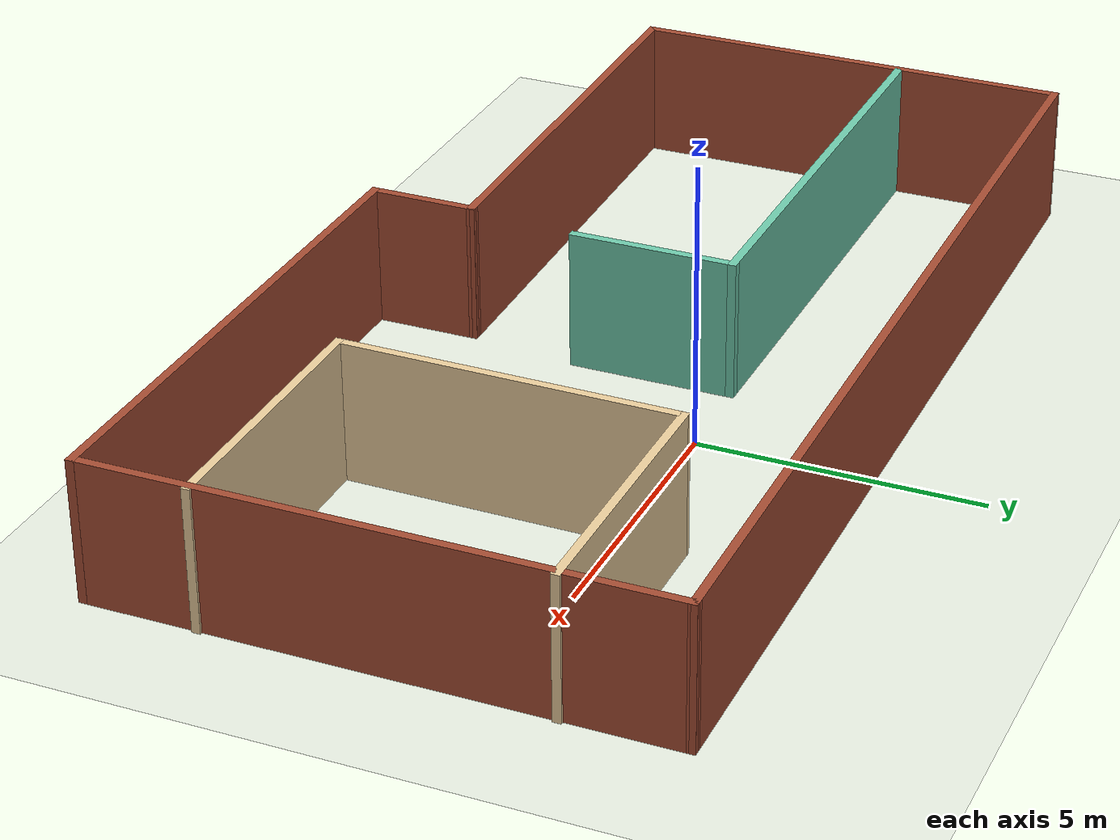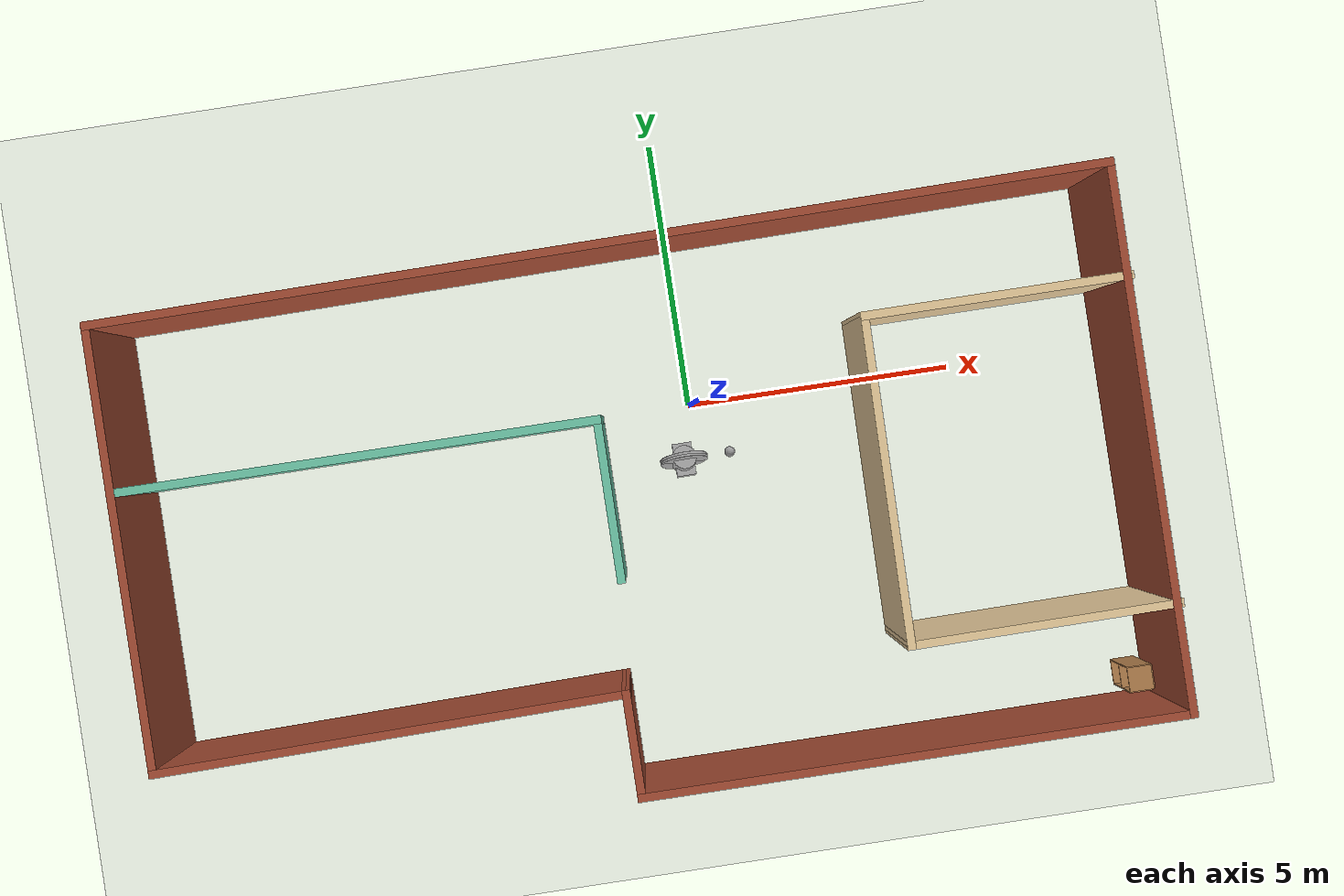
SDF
<sdf version="1.7">
 <world name="default">
  <model name="ground_plane">
   <static>1</static>
   <link name="link">
    <collision name="collision">
     <geometry><plane><normal>0 0 1</normal><size>100 100</size></plane></geometry>
     <surface>
      <contact><collide_bitmask>65535</collide_bitmask></contact>
      <friction><ode><mu>100</mu><mu2>50</mu2></ode></friction>
     </surface>
    </collision>
    <visual name="visual">
     <cast_shadows>0</cast_shadows>
     <geometry><plane><normal>0 0 1</normal><size>100 100</size></plane></geometry>
     <material>
      <script><uri>file://media/materials/scripts/gazebo.material</uri><name>Gazebo/Grey</name></script>
     </material>
    </visual>
   </link>
  </model>
  <model name="Floor_L1">
   <pose>-1.22612 -1.82471 0 0 -0 0</pose>
   <link name="Wall_27">
    <collision name="Wall_27_Collision">
     <geometry><box><size>18.4681 0.15 2.5</size></box></geometry>
     <pose>0 0 1.25 0 -0 0</pose>
    </collision>
    <visual name="Wall_27_Visual">
     <pose>0 0 1.25 0 -0 0</pose>
     <geometry><box><size>18.4681 0.15 2.5</size></box></geometry>
     <material>
      <script><uri>file://media/materials/scripts/gazebo.material</uri><name>Gazebo/Bricks</name></script>
      <ambient>1 1 1 1</ambient>
     </material>
     <meta><layer>0</layer></meta>
    </visual>
    <pose>-0.022885 4.85371 0 0 -0 0.007752</pose>
   </link>
   <link name="Wall_28">
    <collision name="Wall_28_Collision">
     <geometry><box><size>10 0.15 2.5</size></box></geometry>
     <pose>0 0 1.25 0 -0 0</pose>
    </collision>
    <visual name="Wall_28_Visual">
     <pose>0 0 1.25 0 -0 0</pose>
     <geometry><box><size>10 0.15 2.5</size></box></geometry>
     <material>
      <script><uri>file://media/materials/scripts/gazebo.material</uri><name>Gazebo/Bricks</name></script>
      <ambient>1 1 1 1</ambient>
     </material>
     <meta><layer>0</layer></meta>
    </visual>
    <pose>9.13612 -0.000288 0 0 -0 -1.5708</pose>
   </link>
   <link name="Wall_29">
    <collision name="Wall_29_Collision">
     <geometry><box><size>10 0.15 2.5</size></box></geometry>
     <pose>0 0 1.25 0 -0 0</pose>
    </collision>
    <visual name="Wall_29_Visual">
     <pose>0 0 1.25 0 -0 0</pose>
     <geometry><box><size>10 0.15 2.5</size></box></geometry>
     <material>
      <script><uri>file://media/materials/scripts/gazebo.material</uri><name>Gazebo/Bricks</name></script>
      <ambient>1 1 1 1</ambient>
     </material>
     <meta><layer>0</layer></meta>
    </visual>
    <pose>4.21112 -4.92529 0 0 -0 3.14159</pose>
   </link>
   <link name="Wall_30">
    <collision name="Wall_30_Collision">
     <geometry><box><size>2 0.15 2.5</size></box></geometry>
     <pose>0 0 1.25 0 -0 0</pose>
    </collision>
    <visual name="Wall_30_Visual">
     <pose>0 0 1.25 0 -0 0</pose>
     <geometry><box><size>2 0.15 2.5</size></box></geometry>
     <material>
      <script><uri>file://media/materials/scripts/gazebo.material</uri><name>Gazebo/Bricks</name></script>
      <ambient>1 1 1 1</ambient>
     </material>
     <meta><layer>0</layer></meta>
    </visual>
    <pose>-0.713885 -4.00029 0 0 -0 1.5708</pose>
   </link>
   <link name="Wall_31">
    <collision name="Wall_31_Collision">
     <geometry><box><size>8.61874 0.15 2.5</size></box></geometry>
     <pose>0 0 1.25 0 -0 0</pose>
    </collision>
    <visual name="Wall_31_Visual">
     <pose>0 0 1.25 0 -0 0</pose>
     <geometry><box><size>8.61874 0.15 2.5</size></box></geometry>
     <material>
      <script><uri>file://media/materials/scripts/gazebo.material</uri><name>Gazebo/Bricks</name></script>
      <ambient>1 1 1 1</ambient>
     </material>
     <meta><layer>0</layer></meta>
    </visual>
    <pose>-4.94789 -3.14629 0 0 -0 -3.12482</pose>
   </link>
   <link name="Wall_32">
    <collision name="Wall_32_Collision">
     <geometry><box><size>8.15 0.15 2.5</size></box></geometry>
     <pose>0 0 1.25 0 -0 0</pose>
    </collision>
    <visual name="Wall_32_Visual">
     <pose>0 0 1.25 0 -0 0</pose>
     <geometry><box><size>8.15 0.15 2.5</size></box></geometry>
     <material>
      <script><uri>file://media/materials/scripts/gazebo.material</uri><name>Gazebo/Bricks</name></script>
      <ambient>1 1 1 1</ambient>
     </material>
     <meta><layer>0</layer></meta>
    </visual>
    <pose>-9.18188 0.782712 0 0 -0 1.5708</pose>
   </link>
   <link name="Wall_34">
    <collision name="Wall_34_Collision">
     <geometry><box><size>8.75 0.15 2.5</size></box></geometry>
     <pose>0 0 1.25 0 -0 0</pose>
    </collision>
    <visual name="Wall_34_Visual">
     <pose>0 0 1.25 0 -0 0</pose>
     <geometry><box><size>8.75 0.15 2.5</size></box></geometry>
     <material>
      <script><uri>file://media/materials/scripts/gazebo.material</uri><name>Gazebo/Grey</name></script>
      <ambient>0.435294 0.796078 0.67451 1</ambient>
     </material>
     <meta><layer>0</layer></meta>
    </visual>
    <pose>-4.79688 1.78771 0 0 -0 0</pose>
   </link>
   <link name="Wall_35">
    <collision name="Wall_35_Collision">
     <geometry><box><size>3 0.15 2.5</size></box></geometry>
     <pose>0 0 1.25 0 -0 0</pose>
    </collision>
    <visual name="Wall_35_Visual">
     <pose>0 0 1.25 0 -0 0</pose>
     <geometry><box><size>3 0.15 2.5</size></box></geometry>
     <material>
      <script><uri>file://media/materials/scripts/gazebo.material</uri><name>Gazebo/Grey</name></script>
      <ambient>0.435294 0.796078 0.67451 1</ambient>
     </material>
     <meta><layer>0</layer></meta>
    </visual>
    <pose>-0.496885 0.362712 0 0 -0 -1.5708</pose>
   </link>
   <link name="Wall_37">
    <collision name="Wall_37_Collision">
     <geometry><box><size>4.886 0.15 2.5</size></box></geometry>
     <pose>0 0 1.25 0 -0 0</pose>
    </collision>
    <visual name="Wall_37_Visual">
     <pose>0 0 1.25 0 -0 0</pose>
     <geometry><box><size>4.886 0.15 2.5</size></box></geometry>
     <material>
      <script><uri>file://media/materials/scripts/gazebo.material</uri><name>Gazebo/Grey</name></script>
      <ambient>0.921569 0.807843 0.615686 1</ambient>
     </material>
     <meta><layer>0</layer></meta>
    </visual>
    <pose>6.81412 2.89321 0 0 -0 -3.14012</pose>
   </link>
   <link name="Wall_38">
    <collision name="Wall_38_Collision">
     <geometry><box><size>6.02763 0.15 2.5</size></box></geometry>
     <pose>0 0 1.25 0 -0 0</pose>
    </collision>
    <visual name="Wall_38_Visual">
     <pose>0 0 1.25 0 -0 0</pose>
     <geometry><box><size>6.02763 0.15 2.5</size></box></geometry>
     <material>
      <script><uri>file://media/materials/scripts/gazebo.material</uri><name>Gazebo/Grey</name></script>
      <ambient>0.921569 0.807843 0.615686 1</ambient>
     </material>
     <meta><layer>0</layer></meta>
    </visual>
    <pose>4.41911 -0.048788 0 0 -0 -1.57998</pose>
   </link>
   <link name="Wall_39">
    <collision name="Wall_39_Collision">
     <geometry><box><size>4.94065 0.15 2.5</size></box></geometry>
     <pose>0 0 1.25 0 -0 0</pose>
    </collision>
    <visual name="Wall_39_Visual">
     <pose>0 0 1.25 0 -0 0</pose>
     <geometry><box><size>4.94065 0.15 2.5</size></box></geometry>
     <material>
      <script><uri>file://media/materials/scripts/gazebo.material</uri><name>Gazebo/Grey</name></script>
      <ambient>0.921569 0.807843 0.615686 1</ambient>
     </material>
     <meta><layer>0</layer></meta>
    </visual>
    <pose>6.78712 -2.97029 0 0 -0 0.007098</pose>
   </link>
   <static>1</static>
  </model>
  <model name="model">
   <link name="link_0">
    <inertial>
     <mass>1</mass>
     <inertia>
      <ixx>0.166667</ixx>
      <ixy>0</ixy>
      <ixz>0</ixz>
      <iyy>0.166667</iyy>
      <iyz>0</iyz>
      <izz>0.166667</izz>
     </inertia>
    </inertial>
    <visual name="visual">
     <geometry><box><size>0.4 0.7 0.1</size></box></geometry>
     <material>
      <lighting>1</lighting>
      <script><uri>file://media/materials/scripts/gazebo.material</uri><name>Gazebo/Grey</name></script>
      <shader type="pixel"><normal_map>__default__</normal_map></shader>
      <ambient>0.3 0.3 0.3 1</ambient>
      <diffuse>0.7 0.7 0.7 1</diffuse>
      <specular>0.01 0.01 0.01 1</specular>
      <emissive>0 0 0 1</emissive>
     </material>
    </visual>
    <collision name="collision">
     <geometry><box><size>0.4 0.7 0.1</size></box></geometry>
     <surface>
      <friction>
       <ode><mu>1</mu><mu2>1</mu2><fdir1>0 0 0</fdir1><slip1>0</slip1><slip2>0</slip2></ode>
       <torsional>
        <coefficient>1</coefficient>
        <patch_radius>0</patch_radius>
        <surface_radius>0</surface_radius>
        <use_patch_radius>1</use_patch_radius>
        <ode><slip>0</slip></ode>
       </torsional>
      </friction>
      <bounce><restitution_coefficient>0</restitution_coefficient><threshold>1e+06</threshold></bounce>
      <contact>
       <collide_without_contact>0</collide_without_contact>
       <collide_without_contact_bitmask>1</collide_without_contact_bitmask>
       <collide_bitmask>1</collide_bitmask>
       <ode>
        <soft_cfm>0</soft_cfm>
        <soft_erp>0.2</soft_erp>
        <kp>1e+13</kp>
        <kd>1</kd>
        <max_vel>0.01</max_vel>
        <min_depth>0</min_depth>
       </ode>
       <bullet>
        <split_impulse>1</split_impulse>
        <split_impulse_penetration_threshold>-0.01</split_impulse_penetration_threshold>
        <soft_cfm>0</soft_cfm>
        <soft_erp>0.2</soft_erp>
        <kp>1e+13</kp>
        <kd>1</kd>
       </bullet>
      </contact>
     </surface>
    </collision>
   </link>
   <link name="link_1">
    <inertial>
     <mass>1</mass>
     <inertia><ixx>0.1</ixx><ixy>0</ixy><ixz>0</ixz><iyy>0.1</iyy><iyz>0</iyz><izz>0.1</izz></inertia>
    </inertial>
    <visual name="visual">
     <geometry><sphere><radius>0.25</radius></sphere></geometry>
     <material>
      <lighting>1</lighting>
      <script><uri>file://media/materials/scripts/gazebo.material</uri><name>Gazebo/Grey</name></script>
      <shader type="pixel"><normal_map>__default__</normal_map></shader>
      <ambient>0.3 0.3 0.3 1</ambient>
      <diffuse>0.7 0.7 0.7 1</diffuse>
      <specular>0.01 0.01 0.01 1</specular>
      <emissive>0 0 0 1</emissive>
     </material>
    </visual>
    <collision name="collision">
     <geometry><sphere><radius>0.25</radius></sphere></geometry>
     <surface>
      <friction>
       <ode><mu>1</mu><mu2>1</mu2><fdir1>0 0 0</fdir1><slip1>0</slip1><slip2>0</slip2></ode>
       <torsional>
        <coefficient>1</coefficient>
        <patch_radius>0</patch_radius>
        <surface_radius>0</surface_radius>
        <use_patch_radius>1</use_patch_radius>
        <ode><slip>0</slip></ode>
       </torsional>
      </friction>
      <bounce><restitution_coefficient>0</restitution_coefficient><threshold>1e+06</threshold></bounce>
      <contact>
       <collide_without_contact>0</collide_without_contact>
       <collide_without_contact_bitmask>1</collide_without_contact_bitmask>
       <collide_bitmask>1</collide_bitmask>
       <ode>
        <soft_cfm>0</soft_cfm>
        <soft_erp>0.2</soft_erp>
        <kp>1e+13</kp>
        <kd>1</kd>
        <max_vel>0.01</max_vel>
        <min_depth>0</min_depth>
       </ode>
       <bullet>
        <split_impulse>1</split_impulse>
        <split_impulse_penetration_threshold>-0.01</split_impulse_penetration_threshold>
        <soft_cfm>0</soft_cfm>
        <soft_erp>0.2</soft_erp>
        <kp>1e+13</kp>
        <kd>1</kd>
       </bullet>
      </contact>
     </surface>
    </collision>
   </link>
   <link name="link_2">
    <inertial>
     <mass>1</mass>
     <inertia><ixx>0.145833</ixx><ixy>0</ixy><ixz>0</ixz><iyy>0.145833</iyy><iyz>0</iyz><izz>0.125</izz></inertia>
    </inertial>
    <visual name="visual">
     <geometry><cylinder><radius>0.25</radius><length>0.5</length></cylinder></geometry>
     <material>
      <lighting>1</lighting>
      <script><uri>file://media/materials/scripts/gazebo.material</uri><name>Gazebo/Grey</name></script>
      <shader type="pixel"><normal_map>__default__</normal_map></shader>
      <ambient>0.3 0.3 0.3 1</ambient>
      <diffuse>0.7 0.7 0.7 1</diffuse>
      <specular>0.01 0.01 0.01 1</specular>
      <emissive>0 0 0 1</emissive>
     </material>
    </visual>
    <collision name="collision">
     <geometry><cylinder><radius>0.25</radius><length>0.5</length></cylinder></geometry>
     <surface>
      <friction>
       <ode><mu>1</mu><mu2>1</mu2><fdir1>0 0 0</fdir1><slip1>0</slip1><slip2>0</slip2></ode>
       <torsional>
        <coefficient>1</coefficient>
        <patch_radius>0</patch_radius>
        <surface_radius>0</surface_radius>
        <use_patch_radius>1</use_patch_radius>
        <ode><slip>0</slip></ode>
       </torsional>
      </friction>
      <bounce><restitution_coefficient>0</restitution_coefficient><threshold>1e+06</threshold></bounce>
      <contact>
       <collide_without_contact>0</collide_without_contact>
       <collide_without_contact_bitmask>1</collide_without_contact_bitmask>
       <collide_bitmask>1</collide_bitmask>
       <ode>
        <soft_cfm>0</soft_cfm>
        <soft_erp>0.2</soft_erp>
        <kp>1e+13</kp>
        <kd>1</kd>
        <max_vel>0.01</max_vel>
        <min_depth>0</min_depth>
       </ode>
       <bullet>
        <split_impulse>1</split_impulse>
        <split_impulse_penetration_threshold>-0.01</split_impulse_penetration_threshold>
        <soft_cfm>0</soft_cfm>
        <soft_erp>0.2</soft_erp>
        <kp>1e+13</kp>
        <kd>1</kd>
       </bullet>
      </contact>
     </surface>
    </collision>
   </link>
   <link name="link_3">
    <inertial>
     <mass>1</mass>
     <inertia><ixx>0.145833</ixx><ixy>0</ixy><ixz>0</ixz><iyy>0.145833</iyy><iyz>0</iyz><izz>0.125</izz></inertia>
    </inertial>
    <visual name="visual">
     <pose>0 0 0 1.5708 -0 0</pose>
     <geometry><cylinder><radius>0.5</radius><length>0.1</length></cylinder></geometry>
     <material>
      <lighting>1</lighting>
      <script><uri>file://media/materials/scripts/gazebo.material</uri><name>Gazebo/Grey</name></script>
      <shader type="pixel"><normal_map>__default__</normal_map></shader>
      <ambient>0.3 0.3 0.3 1</ambient>
      <diffuse>0.7 0.7 0.7 1</diffuse>
      <specular>0.01 0.01 0.01 1</specular>
      <emissive>0 0 0 1</emissive>
     </material>
    </visual>
    <collision name="collision">
     <pose>0 0 0 1.5708 -0 0</pose>
     <geometry><cylinder><radius>0.5</radius><length>0.1</length></cylinder></geometry>
     <surface>
      <friction>
       <ode><mu>1</mu><mu2>1</mu2><fdir1>0 0 0</fdir1><slip1>0</slip1><slip2>0</slip2></ode>
       <torsional>
        <coefficient>1</coefficient>
        <patch_radius>0</patch_radius>
        <surface_radius>0</surface_radius>
        <use_patch_radius>1</use_patch_radius>
        <ode><slip>0</slip></ode>
       </torsional>
      </friction>
      <bounce><restitution_coefficient>0</restitution_coefficient><threshold>1e+06</threshold></bounce>
      <contact>
       <collide_without_contact>0</collide_without_contact>
       <collide_without_contact_bitmask>1</collide_without_contact_bitmask>
       <collide_bitmask>1</collide_bitmask>
       <ode>
        <soft_cfm>0</soft_cfm>
        <soft_erp>0.2</soft_erp>
        <kp>1e+13</kp>
        <kd>1</kd>
        <max_vel>0.01</max_vel>
        <min_depth>0</min_depth>
       </ode>
       <bullet>
        <split_impulse>1</split_impulse>
        <split_impulse_penetration_threshold>-0.01</split_impulse_penetration_threshold>
        <soft_cfm>0</soft_cfm>
        <soft_erp>0.2</soft_erp>
        <kp>1e+13</kp>
        <kd>1</kd>
       </bullet>
      </contact>
     </surface>
    </collision>
   </link>
   <link name="link_3_clone">
    <inertial>
     <mass>1</mass>
     <inertia><ixx>0.145833</ixx><ixy>0</ixy><ixz>0</ixz><iyy>0.145833</iyy><iyz>0</iyz><izz>0.125</izz></inertia>
    </inertial>
    <pose>0 0 0 -0.01 -0 0.003107</pose>
    <visual name="visual">
     <pose>0 0 0 1.5708 -0 0</pose>
     <geometry><cylinder><radius>0.5</radius><length>0.1</length></cylinder></geometry>
     <material>
      <lighting>1</lighting>
      <script><uri>file://media/materials/scripts/gazebo.material</uri><name>Gazebo/Grey</name></script>
      <shader type="pixel"><normal_map>__default__</normal_map></shader>
      <ambient>0.3 0.3 0.3 1</ambient>
      <diffuse>0.7 0.7 0.7 1</diffuse>
      <specular>0.01 0.01 0.01 1</specular>
      <emissive>0 0 0 1</emissive>
     </material>
    </visual>
    <collision name="collision">
     <pose>0 0 0 1.5708 -0 0</pose>
     <geometry><cylinder><radius>0.5</radius><length>0.1</length></cylinder></geometry>
     <surface>
      <friction>
       <ode><mu>1</mu><mu2>1</mu2><fdir1>0 0 0</fdir1><slip1>0</slip1><slip2>0</slip2></ode>
       <torsional>
        <coefficient>1</coefficient>
        <patch_radius>0</patch_radius>
        <surface_radius>0</surface_radius>
        <use_patch_radius>1</use_patch_radius>
        <ode><slip>0</slip></ode>
       </torsional>
      </friction>
      <bounce><restitution_coefficient>0</restitution_coefficient><threshold>1e+06</threshold></bounce>
      <contact>
       <collide_without_contact>0</collide_without_contact>
       <collide_without_contact_bitmask>1</collide_without_contact_bitmask>
       <collide_bitmask>1</collide_bitmask>
       <ode>
        <soft_cfm>0</soft_cfm>
        <soft_erp>0.2</soft_erp>
        <kp>1e+13</kp>
        <kd>1</kd>
        <max_vel>0.01</max_vel>
        <min_depth>0</min_depth>
       </ode>
       <bullet>
        <split_impulse>1</split_impulse>
        <split_impulse_penetration_threshold>-0.01</split_impulse_penetration_threshold>
        <soft_cfm>0</soft_cfm>
        <soft_erp>0.2</soft_erp>
        <kp>1e+13</kp>
        <kd>1</kd>
       </bullet>
      </contact>
     </surface>
    </collision>
   </link>
   <joint name="link_0_JOINT_0" type="universal">
    <parent>link_0</parent>
    <child>link_3</child>
    <axis>
     <xyz>1 0 0</xyz>
     <limit>
      <lower>-1.79769e+308</lower>
      <upper>1.79769e+308</upper>
      <effort>-1</effort>
      <velocity>-1</velocity>
     </limit>
     <dynamics>
      <spring_reference>0</spring_reference>
      <spring_stiffness>0</spring_stiffness>
      <damping>0</damping>
      <friction>0</friction>
     </dynamics>
    </axis>
    <axis2>
     <xyz>0 0 1</xyz>
     <limit><lower>-1e+16</lower><upper>1e+16</upper><effort>-1</effort><velocity>-1</velocity></limit>
     <dynamics>
      <spring_reference>0</spring_reference>
      <spring_stiffness>0</spring_stiffness>
      <damping>0</damping>
      <friction>0</friction>
     </dynamics>
    </axis2>
    <physics>
     <ode><limit><cfm>0</cfm><erp>0.2</erp></limit><suspension><cfm>0</cfm><erp>0.2</erp></suspension></ode>
    </physics>
   </joint>
   <joint name="link_0_JOINT_1" type="universal">
    <parent>link_0</parent>
    <child>link_3_clone</child>
    <axis>
     <xyz>0.999995 -0.003107 -3.1e-05</xyz>
     <limit>
      <lower>-1.79769e+308</lower>
      <upper>1.79769e+308</upper>
      <effort>-1</effort>
      <velocity>-1</velocity>
     </limit>
     <dynamics>
      <spring_reference>0</spring_reference>
      <spring_stiffness>0</spring_stiffness>
      <damping>0</damping>
      <friction>0</friction>
     </dynamics>
    </axis>
    <axis2>
     <xyz>0 0 1</xyz>
     <limit><lower>-1e+16</lower><upper>1e+16</upper><effort>-1</effort><velocity>-1</velocity></limit>
     <dynamics>
      <spring_reference>0</spring_reference>
      <spring_stiffness>0</spring_stiffness>
      <damping>0</damping>
      <friction>0</friction>
     </dynamics>
    </axis2>
    <physics>
     <ode><limit><cfm>0</cfm><erp>0.2</erp></limit><suspension><cfm>0</cfm><erp>0.2</erp></suspension></ode>
    </physics>
   </joint>
   <joint name="link_0_JOINT_2" type="universal">
    <parent>link_0</parent>
    <child>link_2</child>
    <axis>
     <xyz>1 0 0</xyz>
     <limit>
      <lower>-1.79769e+308</lower>
      <upper>1.79769e+308</upper>
      <effort>-1</effort>
      <velocity>-1</velocity>
     </limit>
     <dynamics>
      <spring_reference>0</spring_reference>
      <spring_stiffness>0</spring_stiffness>
      <damping>0</damping>
      <friction>0</friction>
     </dynamics>
    </axis>
    <axis2>
     <xyz>0 0 1</xyz>
     <limit><lower>-1e+16</lower><upper>1e+16</upper><effort>-1</effort><velocity>-1</velocity></limit>
     <dynamics>
      <spring_reference>0</spring_reference>
      <spring_stiffness>0</spring_stiffness>
      <damping>0</damping>
      <friction>0</friction>
     </dynamics>
    </axis2>
    <physics>
     <ode><limit><cfm>0</cfm><erp>0.2</erp></limit><suspension><cfm>0</cfm><erp>0.2</erp></suspension></ode>
    </physics>
   </joint>
   <joint name="link_2_JOINT_4" type="universal">
    <parent>link_2</parent>
    <child>link_1</child>
    <axis>
     <xyz>1 0 0</xyz>
     <limit>
      <lower>-1.79769e+308</lower>
      <upper>1.79769e+308</upper>
      <effort>-1</effort>
      <velocity>-1</velocity>
     </limit>
     <dynamics>
      <spring_reference>0</spring_reference>
      <spring_stiffness>0</spring_stiffness>
      <damping>0</damping>
      <friction>0</friction>
     </dynamics>
    </axis>
    <axis2>
     <xyz>0 0 1</xyz>
     <limit><lower>-1e+16</lower><upper>1e+16</upper><effort>-1</effort><velocity>-1</velocity></limit>
     <dynamics>
      <spring_reference>0</spring_reference>
      <spring_stiffness>0</spring_stiffness>
      <damping>0</damping>
      <friction>0</friction>
     </dynamics>
    </axis2>
    <physics>
     <ode><limit><cfm>0</cfm><erp>0.2</erp></limit><suspension><cfm>0</cfm><erp>0.2</erp></suspension></ode>
    </physics>
   </joint>
   <static>1</static>
   <pose>-0.171138 -1.0701 -2.75033 -0.241448 0.058197 0.00838</pose>
  </model>
  <model name="my_ball">
   <link name="link_0">
    <inertial>
     <mass>1</mass>
     <inertia><ixx>0.1</ixx><ixy>0</ixy><ixz>0</ixz><iyy>0.1</iyy><iyz>0</iyz><izz>0.1</izz></inertia>
    </inertial>
    <visual name="visual">
     <geometry><sphere><radius>0.1</radius></sphere></geometry>
     <material>
      <lighting>1</lighting>
      <script><uri>file://media/materials/scripts/gazebo.material</uri><name>Gazebo/Grey</name></script>
      <shader type="pixel"><normal_map>__default__</normal_map></shader>
      <ambient>1 1 1 1</ambient>
      <diffuse>1 1 1 1</diffuse>
      <specular>1 1 1 1</specular>
      <emissive>1 1 1 1</emissive>
     </material>
    </visual>
    <collision name="collision">
     <geometry><sphere><radius>0.1</radius></sphere></geometry>
     <surface>
      <friction>
       <ode><mu>1</mu><mu2>1</mu2><fdir1>0 0 0</fdir1><slip1>0</slip1><slip2>0</slip2></ode>
       <torsional>
        <coefficient>1</coefficient>
        <patch_radius>0</patch_radius>
        <surface_radius>0</surface_radius>
        <use_patch_radius>1</use_patch_radius>
        <ode><slip>0</slip></ode>
       </torsional>
      </friction>
      <bounce><restitution_coefficient>0</restitution_coefficient><threshold>1e+06</threshold></bounce>
      <contact>
       <collide_without_contact>0</collide_without_contact>
       <collide_without_contact_bitmask>1</collide_without_contact_bitmask>
       <collide_bitmask>1</collide_bitmask>
       <ode>
        <soft_cfm>0</soft_cfm>
        <soft_erp>0.2</soft_erp>
        <kp>1e+13</kp>
        <kd>1</kd>
        <max_vel>0.01</max_vel>
        <min_depth>0</min_depth>
       </ode>
       <bullet>
        <split_impulse>1</split_impulse>
        <split_impulse_penetration_threshold>-0.01</split_impulse_penetration_threshold>
        <soft_cfm>0</soft_cfm>
        <soft_erp>0.2</soft_erp>
        <kp>1e+13</kp>
        <kd>1</kd>
       </bullet>
      </contact>
     </surface>
    </collision>
   </link>
   <static>0</static>
   <pose>0.640591 -0.990298 0.1 0 -0 0</pose>
  </model>
  <model name="cabinet">
   <static>1</static>
   <link name="cabinet_bottom_plate">
    <inertial>
     <pose>0 0 -1 0 -0 0</pose>
     <inertia><ixx>2.05</ixx><ixy>0</ixy><ixz>0</ixz><iyy>2.05</iyy><iyz>0</iyz><izz>2.05</izz></inertia>
     <mass>25</mass>
    </inertial>
    <collision name="cabinet_bottom_plate_geom">
     <pose>0 0 0.01 0 -0 0</pose>
     <geometry><box><size>0.45 0.45 0.02</size></box></geometry>
    </collision>
    <visual name="cabinet_bottom_plate_geom_visual">
     <pose>0 0 0.01 0 -0 0</pose>
     <geometry><box><size>0.45 0.45 0.02</size></box></geometry>
     <material>
      <script><uri>file://media/materials/scripts/gazebo.material</uri><name>Gazebo/Wood</name></script>
     </material>
    </visual>
    <collision name="cabinet_bottom_plate_geom_cabinet_back_plate">
     <pose>0.235 0 0.51 0 -0 0</pose>
     <geometry><box><size>0.02 0.45 1.02</size></box></geometry>
    </collision>
    <visual name="cabinet_bottom_plate_geom_cabinet_back_plate_visual">
     <pose>0.235 0 0.51 0 -0 0</pose>
     <geometry><box><size>0.02 0.45 1.02</size></box></geometry>
     <material>
      <script><uri>file://media/materials/scripts/gazebo.material</uri><name>Gazebo/Wood</name></script>
     </material>
    </visual>
    <collision name="cabinet_bottom_plate_geom_cabinet_left_plate">
     <pose>0 0.235 0.51 0 -0 0</pose>
     <geometry><box><size>0.45 0.02 1.02</size></box></geometry>
    </collision>
    <visual name="cabinet_bottom_plate_geom_cabinet_left_plate_visual">
     <pose>0 0.235 0.51 0 -0 0</pose>
     <geometry><box><size>0.45 0.02 1.02</size></box></geometry>
     <material>
      <script><uri>file://media/materials/scripts/gazebo.material</uri><name>Gazebo/Wood</name></script>
     </material>
    </visual>
    <collision name="cabinet_bottom_plate_geom_cabinet_middle_plate">
     <pose>0 0 0.51 0 -0 0</pose>
     <geometry><box><size>0.45 0.45 0.02</size></box></geometry>
    </collision>
    <visual name="cabinet_bottom_plate_geom_cabinet_middle_plate_visual">
     <pose>0 0 0.51 0 -0 0</pose>
     <geometry><box><size>0.45 0.45 0.02</size></box></geometry>
     <material>
      <script><uri>file://media/materials/scripts/gazebo.material</uri><name>Gazebo/Wood</name></script>
     </material>
    </visual>
    <collision name="cabinet_bottom_plate_geom_cabinet_right_plate">
     <pose>0 -0.235 0.51 0 -0 0</pose>
     <geometry><box><size>0.45 0.02 1.02</size></box></geometry>
    </collision>
    <visual name="cabinet_bottom_plate_geom_cabinet_right_plate_visual">
     <pose>0 -0.235 0.51 0 -0 0</pose>
     <geometry><box><size>0.45 0.02 1.02</size></box></geometry>
     <material>
      <script><uri>file://media/materials/scripts/gazebo.material</uri><name>Gazebo/Wood</name></script>
     </material>
    </visual>
    <collision name="cabinet_bottom_plate_geom_cabinet_top_plate">
     <pose>0 0 1.01 0 -0 0</pose>
     <geometry><box><size>0.45 0.45 0.02</size></box></geometry>
    </collision>
    <visual name="cabinet_bottom_plate_geom_cabinet_top_plate_visual">
     <pose>0 0 1.01 0 -0 0</pose>
     <geometry><box><size>0.45 0.45 0.02</size></box></geometry>
     <material>
      <script><uri>file://media/materials/scripts/gazebo.material</uri><name>Gazebo/Wood</name></script>
     </material>
    </visual>
   </link>
   <pose>7.5016 -6.28361 0 0 -0 0</pose>
  </model>
 </world>
</sdf>
